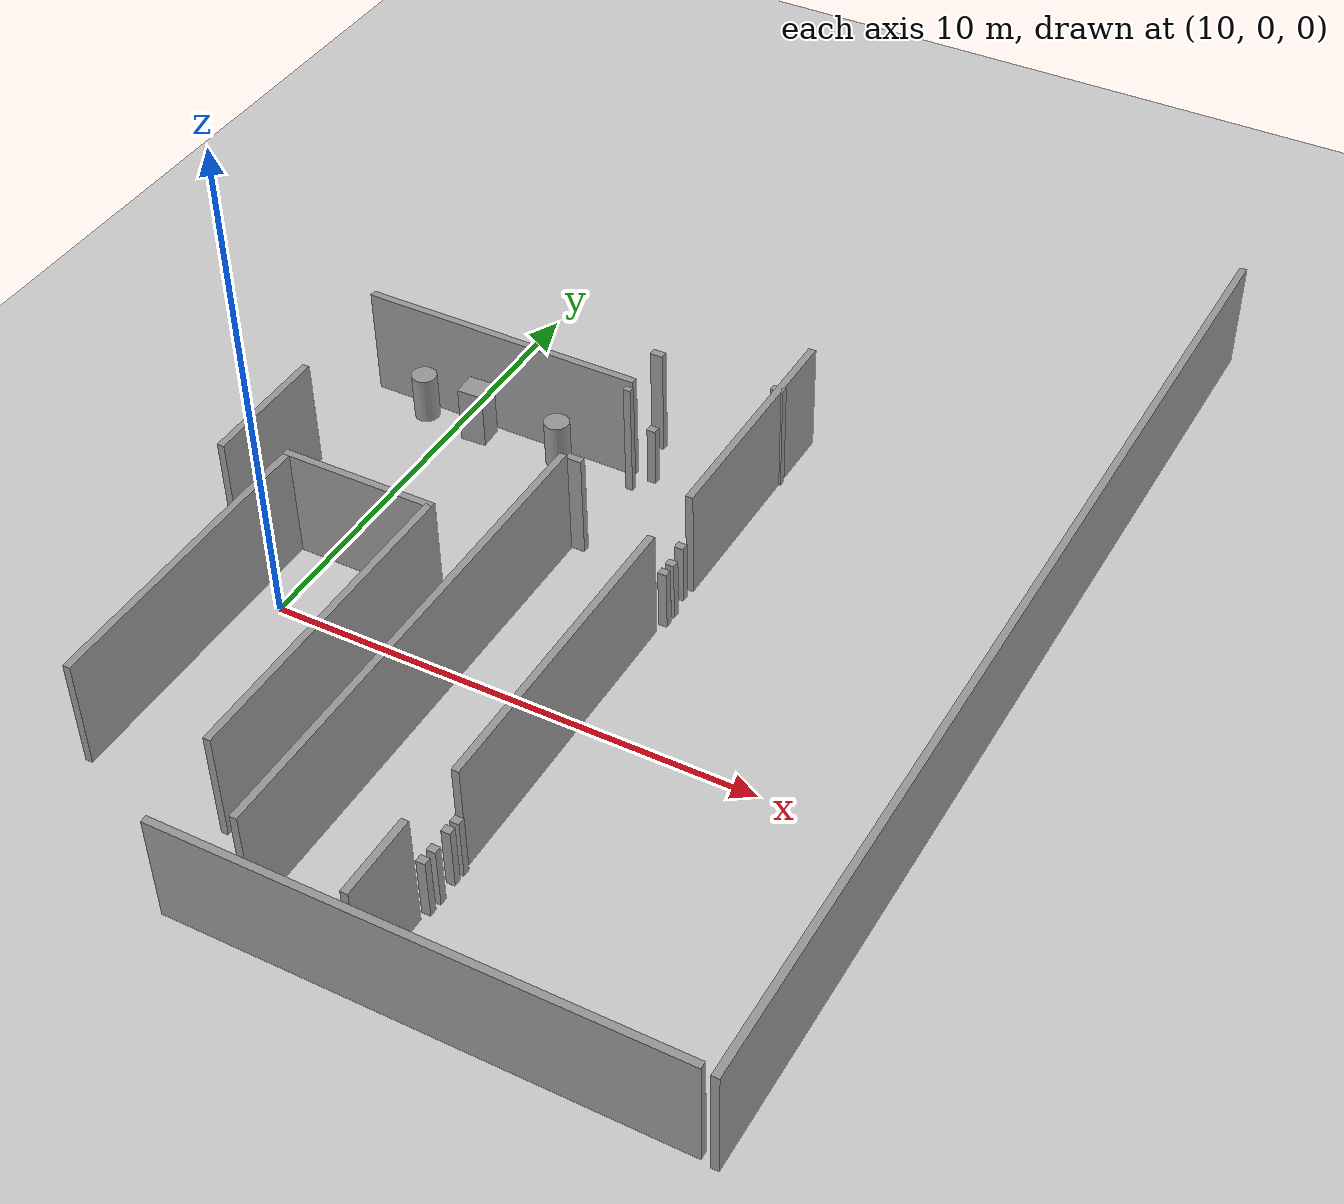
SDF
<sdf version="1.7">
 <world name="default">
  <model name="ground_plane">
   <static>1</static>
   <link name="link">
    <collision name="collision">
     <geometry><plane><normal>0 0 1</normal><size>100 100</size></plane></geometry>
     <surface>
      <contact><collide_bitmask>65535</collide_bitmask></contact>
      <friction><ode><mu>100</mu><mu2>50</mu2></ode></friction>
     </surface>
    </collision>
    <visual name="visual">
     <cast_shadows>0</cast_shadows>
     <geometry><plane><normal>0 0 1</normal><size>100 100</size></plane></geometry>
     <material>
      <script><uri>file://media/materials/scripts/gazebo.material</uri><name>Gazebo/Grey</name></script>
     </material>
    </visual>
   </link>
  </model>
  <model name="cabinet">
   <static>1</static>
   <link name="cabinet_bottom_plate">
    <inertial>
     <pose>0 0 -1 0 -0 0</pose>
     <inertia><ixx>2.05</ixx><ixy>0</ixy><ixz>0</ixz><iyy>2.05</iyy><iyz>0</iyz><izz>2.05</izz></inertia>
     <mass>25</mass>
    </inertial>
    <collision name="cabinet_bottom_plate_geom">
     <pose>0 0 0.01 0 -0 0</pose>
     <geometry><box><size>0.45 0.45 0.02</size></box></geometry>
    </collision>
    <visual name="cabinet_bottom_plate_geom_visual">
     <pose>0 0 0.01 0 -0 0</pose>
     <geometry><box><size>0.45 0.45 0.02</size></box></geometry>
     <material>
      <script><uri>file://media/materials/scripts/gazebo.material</uri><name>Gazebo/Wood</name></script>
     </material>
    </visual>
    <collision name="cabinet_bottom_plate_geom_cabinet_back_plate">
     <pose>0.235 0 0.51 0 -0 0</pose>
     <geometry><box><size>0.02 0.45 1.02</size></box></geometry>
    </collision>
    <visual name="cabinet_bottom_plate_geom_cabinet_back_plate_visual">
     <pose>0.235 0 0.51 0 -0 0</pose>
     <geometry><box><size>0.02 0.45 1.02</size></box></geometry>
     <material>
      <script><uri>file://media/materials/scripts/gazebo.material</uri><name>Gazebo/Wood</name></script>
     </material>
    </visual>
    <collision name="cabinet_bottom_plate_geom_cabinet_left_plate">
     <pose>0 0.235 0.51 0 -0 0</pose>
     <geometry><box><size>0.45 0.02 1.02</size></box></geometry>
    </collision>
    <visual name="cabinet_bottom_plate_geom_cabinet_left_plate_visual">
     <pose>0 0.235 0.51 0 -0 0</pose>
     <geometry><box><size>0.45 0.02 1.02</size></box></geometry>
     <material>
      <script><uri>file://media/materials/scripts/gazebo.material</uri><name>Gazebo/Wood</name></script>
     </material>
    </visual>
    <collision name="cabinet_bottom_plate_geom_cabinet_middle_plate">
     <pose>0 0 0.51 0 -0 0</pose>
     <geometry><box><size>0.45 0.45 0.02</size></box></geometry>
    </collision>
    <visual name="cabinet_bottom_plate_geom_cabinet_middle_plate_visual">
     <pose>0 0 0.51 0 -0 0</pose>
     <geometry><box><size>0.45 0.45 0.02</size></box></geometry>
     <material>
      <script><uri>file://media/materials/scripts/gazebo.material</uri><name>Gazebo/Wood</name></script>
     </material>
    </visual>
    <collision name="cabinet_bottom_plate_geom_cabinet_right_plate">
     <pose>0 -0.235 0.51 0 -0 0</pose>
     <geometry><box><size>0.45 0.02 1.02</size></box></geometry>
    </collision>
    <visual name="cabinet_bottom_plate_geom_cabinet_right_plate_visual">
     <pose>0 -0.235 0.51 0 -0 0</pose>
     <geometry><box><size>0.45 0.02 1.02</size></box></geometry>
     <material>
      <script><uri>file://media/materials/scripts/gazebo.material</uri><name>Gazebo/Wood</name></script>
     </material>
    </visual>
    <collision name="cabinet_bottom_plate_geom_cabinet_top_plate">
     <pose>0 0 1.01 0 -0 0</pose>
     <geometry><box><size>0.45 0.45 0.02</size></box></geometry>
    </collision>
    <visual name="cabinet_bottom_plate_geom_cabinet_top_plate_visual">
     <pose>0 0 1.01 0 -0 0</pose>
     <geometry><box><size>0.45 0.45 0.02</size></box></geometry>
     <material>
      <script><uri>file://media/materials/scripts/gazebo.material</uri><name>Gazebo/Wood</name></script>
     </material>
    </visual>
   </link>
   <pose>9.66101 6.89219 0 0 -0 0</pose>
  </model>
  <model name="cabinet_0">
   <static>1</static>
   <link name="cabinet_bottom_plate">
    <inertial>
     <pose>0 0 -1 0 -0 0</pose>
     <inertia><ixx>2.05</ixx><ixy>0</ixy><ixz>0</ixz><iyy>2.05</iyy><iyz>0</iyz><izz>2.05</izz></inertia>
     <mass>25</mass>
    </inertial>
    <collision name="cabinet_bottom_plate_geom">
     <pose>0 0 0.01 0 -0 0</pose>
     <geometry><box><size>0.45 0.45 0.02</size></box></geometry>
    </collision>
    <visual name="cabinet_bottom_plate_geom_visual">
     <pose>0 0 0.01 0 -0 0</pose>
     <geometry><box><size>0.45 0.45 0.02</size></box></geometry>
     <material>
      <script><uri>file://media/materials/scripts/gazebo.material</uri><name>Gazebo/Wood</name></script>
     </material>
    </visual>
    <collision name="cabinet_bottom_plate_geom_cabinet_back_plate">
     <pose>0.235 0 0.51 0 -0 0</pose>
     <geometry><box><size>0.02 0.45 1.02</size></box></geometry>
    </collision>
    <visual name="cabinet_bottom_plate_geom_cabinet_back_plate_visual">
     <pose>0.235 0 0.51 0 -0 0</pose>
     <geometry><box><size>0.02 0.45 1.02</size></box></geometry>
     <material>
      <script><uri>file://media/materials/scripts/gazebo.material</uri><name>Gazebo/Wood</name></script>
     </material>
    </visual>
    <collision name="cabinet_bottom_plate_geom_cabinet_left_plate">
     <pose>0 0.235 0.51 0 -0 0</pose>
     <geometry><box><size>0.45 0.02 1.02</size></box></geometry>
    </collision>
    <visual name="cabinet_bottom_plate_geom_cabinet_left_plate_visual">
     <pose>0 0.235 0.51 0 -0 0</pose>
     <geometry><box><size>0.45 0.02 1.02</size></box></geometry>
     <material>
      <script><uri>file://media/materials/scripts/gazebo.material</uri><name>Gazebo/Wood</name></script>
     </material>
    </visual>
    <collision name="cabinet_bottom_plate_geom_cabinet_middle_plate">
     <pose>0 0 0.51 0 -0 0</pose>
     <geometry><box><size>0.45 0.45 0.02</size></box></geometry>
    </collision>
    <visual name="cabinet_bottom_plate_geom_cabinet_middle_plate_visual">
     <pose>0 0 0.51 0 -0 0</pose>
     <geometry><box><size>0.45 0.45 0.02</size></box></geometry>
     <material>
      <script><uri>file://media/materials/scripts/gazebo.material</uri><name>Gazebo/Wood</name></script>
     </material>
    </visual>
    <collision name="cabinet_bottom_plate_geom_cabinet_right_plate">
     <pose>0 -0.235 0.51 0 -0 0</pose>
     <geometry><box><size>0.45 0.02 1.02</size></box></geometry>
    </collision>
    <visual name="cabinet_bottom_plate_geom_cabinet_right_plate_visual">
     <pose>0 -0.235 0.51 0 -0 0</pose>
     <geometry><box><size>0.45 0.02 1.02</size></box></geometry>
     <material>
      <script><uri>file://media/materials/scripts/gazebo.material</uri><name>Gazebo/Wood</name></script>
     </material>
    </visual>
    <collision name="cabinet_bottom_plate_geom_cabinet_top_plate">
     <pose>0 0 1.01 0 -0 0</pose>
     <geometry><box><size>0.45 0.45 0.02</size></box></geometry>
    </collision>
    <visual name="cabinet_bottom_plate_geom_cabinet_top_plate_visual">
     <pose>0 0 1.01 0 -0 0</pose>
     <geometry><box><size>0.45 0.45 0.02</size></box></geometry>
     <material>
      <script><uri>file://media/materials/scripts/gazebo.material</uri><name>Gazebo/Wood</name></script>
     </material>
    </visual>
   </link>
   <pose>9.68381 7.3421 0 0 -0 0</pose>
  </model>
  <model name="wooden_board_clone_clone">
   <link name="base">
    <pose>0 0 0.00523 0 -0 0</pose>
    <inertial>
     <mass>0.2765</mass>
     <inertia>
      <ixx>0.0025148</ixx>
      <ixy>0</ixy>
      <ixz>0</ixz>
      <iyy>0.00024037</iyy>
      <iyz>0</iyz>
      <izz>0.00275013</izz>
     </inertia>
    </inertial>
    <collision name="collision">
     <geometry><box><size>0.1016 0.3302 0.01046</size></box></geometry>
     <surface>
      <contact>
       <poissons_ratio>0.347</poissons_ratio>
       <elastic_modulus>8.8e+09</elastic_modulus>
       <ode><kp>100000</kp><kd>100</kd><max_vel>100</max_vel><min_depth>0.001</min_depth></ode>
      </contact>
      <friction>
       <torsional>
        <coefficient>1</coefficient>
        <use_patch_radius>0</use_patch_radius>
        <surface_radius>0.01</surface_radius>
       </torsional>
      </friction>
     </surface>
    </collision>
    <visual name="visual">
     <geometry><box><size>0.1016 0.3302 0.01046</size></box></geometry>
     <material>
      <script><uri>file://media/materials/scripts/gazebo.material</uri><name>Gazebo/Wood</name></script>
     </material>
    </visual>
    <visual name="tee_nut_1">
     <pose>0 -0.116 0 0 -0 0</pose>
     <geometry><cylinder><radius>0.00635</radius><length>0.0105646</length></cylinder></geometry>
     <material>
      <script><uri>file://media/materials/scripts/gazebo.material</uri><name>Gazebo/Grey</name></script>
     </material>
    </visual>
    <visual name="tee_nut_2">
     <pose>0 -0.038 0 0 -0 0</pose>
     <geometry><cylinder><radius>0.00635</radius><length>0.0105646</length></cylinder></geometry>
     <material>
      <script><uri>file://media/materials/scripts/gazebo.material</uri><name>Gazebo/Grey</name></script>
     </material>
    </visual>
    <visual name="tee_nut_3">
     <pose>0 0.038 0 0 -0 0</pose>
     <geometry><cylinder><radius>0.00635</radius><length>0.0105646</length></cylinder></geometry>
     <material>
      <script><uri>file://media/materials/scripts/gazebo.material</uri><name>Gazebo/Grey</name></script>
     </material>
    </visual>
    <visual name="tee_nut_4">
     <pose>0 0.116 0 0 -0 0</pose>
     <geometry><cylinder><radius>0.00635</radius><length>0.0105646</length></cylinder></geometry>
     <material>
      <script><uri>file://media/materials/scripts/gazebo.material</uri><name>Gazebo/Grey</name></script>
     </material>
    </visual>
   </link>
   <pose>11.7706 1.42187 -0.001007 -0 -0 -2.27337</pose>
  </model>
  <model name="wooden_board_clone_clone_1">
   <link name="base">
    <pose>0 0 0.00523 0 -0 0</pose>
    <inertial>
     <mass>0.2765</mass>
     <inertia>
      <ixx>0.0025148</ixx>
      <ixy>0</ixy>
      <ixz>0</ixz>
      <iyy>0.00024037</iyy>
      <iyz>0</iyz>
      <izz>0.00275013</izz>
     </inertia>
    </inertial>
    <collision name="collision">
     <geometry><box><size>0.1016 0.3302 0.01046</size></box></geometry>
     <surface>
      <contact>
       <poissons_ratio>0.347</poissons_ratio>
       <elastic_modulus>8.8e+09</elastic_modulus>
       <ode><kp>100000</kp><kd>100</kd><max_vel>100</max_vel><min_depth>0.001</min_depth></ode>
      </contact>
      <friction>
       <torsional>
        <coefficient>1</coefficient>
        <use_patch_radius>0</use_patch_radius>
        <surface_radius>0.01</surface_radius>
       </torsional>
      </friction>
     </surface>
    </collision>
    <visual name="visual">
     <geometry><box><size>0.1016 0.3302 0.01046</size></box></geometry>
     <material>
      <script><uri>file://media/materials/scripts/gazebo.material</uri><name>Gazebo/Wood</name></script>
     </material>
    </visual>
    <visual name="tee_nut_1">
     <pose>0 -0.116 0 0 -0 0</pose>
     <geometry><cylinder><radius>0.00635</radius><length>0.0105646</length></cylinder></geometry>
     <material>
      <script><uri>file://media/materials/scripts/gazebo.material</uri><name>Gazebo/Grey</name></script>
     </material>
    </visual>
    <visual name="tee_nut_2">
     <pose>0 -0.038 0 0 -0 0</pose>
     <geometry><cylinder><radius>0.00635</radius><length>0.0105646</length></cylinder></geometry>
     <material>
      <script><uri>file://media/materials/scripts/gazebo.material</uri><name>Gazebo/Grey</name></script>
     </material>
    </visual>
    <visual name="tee_nut_3">
     <pose>0 0.038 0 0 -0 0</pose>
     <geometry><cylinder><radius>0.00635</radius><length>0.0105646</length></cylinder></geometry>
     <material>
      <script><uri>file://media/materials/scripts/gazebo.material</uri><name>Gazebo/Grey</name></script>
     </material>
    </visual>
    <visual name="tee_nut_4">
     <pose>0 0.116 0 0 -0 0</pose>
     <geometry><cylinder><radius>0.00635</radius><length>0.0105646</length></cylinder></geometry>
     <material>
      <script><uri>file://media/materials/scripts/gazebo.material</uri><name>Gazebo/Grey</name></script>
     </material>
    </visual>
   </link>
   <pose>12.1321 1.02226 -0.001007 0 0 -1.57323</pose>
  </model>
  <model name="unit_box_clone_clone_clone">
   <pose>10.5266 6.08598 0.603201 1e-06 2e-06 0.053508</pose>
   <link name="link">
    <inertial>
     <mass>1</mass>
     <inertia>
      <ixx>0.166667</ixx>
      <ixy>0</ixy>
      <ixz>0</ixz>
      <iyy>0.166667</iyy>
      <iyz>0</iyz>
      <izz>0.166667</izz>
     </inertia>
    </inertial>
    <collision name="collision"><geometry><box><size>0.544182 0.503784 1.2064</size></box></geometry></collision>
    <visual name="visual">
     <geometry><box><size>0.544182 0.503784 1.2064</size></box></geometry>
     <material>
      <script><name>Gazebo/Grey</name><uri>file://media/materials/scripts/gazebo.material</uri></script>
     </material>
    </visual>
   </link>
  </model>
  <model name="unit_cylinder_0_clone_clone">
   <pose>12.3465 6.1337 0.499998 0 1e-06 2e-06</pose>
   <link name="link">
    <inertial>
     <mass>1</mass>
     <inertia><ixx>0.145833</ixx><ixy>0</ixy><ixz>0</ixz><iyy>0.145833</iyy><iyz>0</iyz><izz>0.125</izz></inertia>
    </inertial>
    <collision name="collision">
     <geometry><cylinder><radius>0.25828</radius><length>1</length></cylinder></geometry>
    </collision>
    <visual name="visual">
     <geometry><cylinder><radius>0.25828</radius><length>1</length></cylinder></geometry>
     <material>
      <script><name>Gazebo/Grey</name><uri>file://media/materials/scripts/gazebo.material</uri></script>
     </material>
    </visual>
   </link>
  </model>
  <model name="unit_cylinder_0_clone_clone_0">
   <pose>9.24397 6.16248 0.499998 0 1e-06 2e-06</pose>
   <link name="link">
    <inertial>
     <mass>1</mass>
     <inertia><ixx>0.145833</ixx><ixy>0</ixy><ixz>0</ixz><iyy>0.145833</iyy><iyz>0</iyz><izz>0.125</izz></inertia>
    </inertial>
    <collision name="collision">
     <geometry><cylinder><radius>0.25828</radius><length>1</length></cylinder></geometry>
    </collision>
    <visual name="visual">
     <geometry><cylinder><radius>0.25828</radius><length>1</length></cylinder></geometry>
     <material>
      <script><name>Gazebo/Grey</name><uri>file://media/materials/scripts/gazebo.material</uri></script>
     </material>
    </visual>
   </link>
  </model>
  <model name="unit_box_clone_1_clone_0_clone">
   <pose>16.4024 3.80218 0.644231 4e-06 3e-06 -0.000104</pose>
   <link name="link">
    <inertial>
     <mass>1</mass>
     <inertia>
      <ixx>0.166667</ixx>
      <ixy>0</ixy>
      <ixz>0</ixz>
      <iyy>0.166667</iyy>
      <iyz>0</iyz>
      <izz>0.166667</izz>
     </inertia>
    </inertial>
    <collision name="collision"><geometry><box><size>0.179333 0.158753 1.28846</size></box></geometry></collision>
    <visual name="visual">
     <geometry><box><size>0.179333 0.158753 1.28846</size></box></geometry>
     <material>
      <script><name>Gazebo/Grey</name><uri>file://media/materials/scripts/gazebo.material</uri></script>
     </material>
    </visual>
   </link>
  </model>
  <model name="unit_box_clone_1_clone_0_clone_0">
   <pose>16.4779 3.31335 0.64423 -1e-06 3e-06 -0.000197</pose>
   <link name="link">
    <inertial>
     <mass>1</mass>
     <inertia>
      <ixx>0.166667</ixx>
      <ixy>0</ixy>
      <ixz>0</ixz>
      <iyy>0.166667</iyy>
      <iyz>0</iyz>
      <izz>0.166667</izz>
     </inertia>
    </inertial>
    <collision name="collision"><geometry><box><size>0.179333 0.158753 1.28846</size></box></geometry></collision>
    <visual name="visual">
     <geometry><box><size>0.179333 0.158753 1.28846</size></box></geometry>
     <material>
      <script><name>Gazebo/Grey</name><uri>file://media/materials/scripts/gazebo.material</uri></script>
     </material>
    </visual>
   </link>
  </model>
  <model name="unit_box_clone_1_clone_0_clone_1">
   <pose>16.4044 -4.09079 0.64423 0 0 -0.000157</pose>
   <link name="link">
    <inertial>
     <mass>1</mass>
     <inertia>
      <ixx>0.166667</ixx>
      <ixy>0</ixy>
      <ixz>0</ixz>
      <iyy>0.166667</iyy>
      <iyz>0</iyz>
      <izz>0.166667</izz>
     </inertia>
    </inertial>
    <collision name="collision"><geometry><box><size>0.179333 0.158753 1.28846</size></box></geometry></collision>
    <visual name="visual">
     <geometry><box><size>0.179333 0.158753 1.28846</size></box></geometry>
     <material>
      <script><name>Gazebo/Grey</name><uri>file://media/materials/scripts/gazebo.material</uri></script>
     </material>
    </visual>
   </link>
  </model>
  <model name="unit_box_clone_1_clone_0_clone_2">
   <pose>16.4195 -4.5488 0.64423 0 -0 -7.9e-05</pose>
   <link name="link">
    <inertial>
     <mass>1</mass>
     <inertia>
      <ixx>0.166667</ixx>
      <ixy>0</ixy>
      <ixz>0</ixz>
      <iyy>0.166667</iyy>
      <iyz>0</iyz>
      <izz>0.166667</izz>
     </inertia>
    </inertial>
    <collision name="collision"><geometry><box><size>0.179333 0.158753 1.28846</size></box></geometry></collision>
    <visual name="visual">
     <geometry><box><size>0.179333 0.158753 1.28846</size></box></geometry>
     <material>
      <script><name>Gazebo/Grey</name><uri>file://media/materials/scripts/gazebo.material</uri></script>
     </material>
    </visual>
   </link>
  </model>
  <model name="unit_box_clone_1_clone_0_clone_3">
   <pose>15.9977 6.53727 0.64423 -1e-06 0 -0.000229</pose>
   <link name="link">
    <inertial>
     <mass>1</mass>
     <inertia>
      <ixx>0.166667</ixx>
      <ixy>0</ixy>
      <ixz>0</ixz>
      <iyy>0.166667</iyy>
      <iyz>0</iyz>
      <izz>0.166667</izz>
     </inertia>
    </inertial>
    <collision name="collision"><geometry><box><size>0.179333 0.158753 1.28846</size></box></geometry></collision>
    <visual name="visual">
     <geometry><box><size>0.179333 0.158753 1.28846</size></box></geometry>
     <material>
      <script><name>Gazebo/Grey</name><uri>file://media/materials/scripts/gazebo.material</uri></script>
     </material>
    </visual>
   </link>
  </model>
  <model name="unit_box_clone_1_clone_0_clone_4">
   <pose>14.2973 6.51749 0.64422 4e-06 -0 -5.1e-05</pose>
   <link name="link">
    <inertial>
     <mass>1</mass>
     <inertia>
      <ixx>0.166667</ixx>
      <ixy>0</ixy>
      <ixz>0</ixz>
      <iyy>0.166667</iyy>
      <iyz>0</iyz>
      <izz>0.166667</izz>
     </inertia>
    </inertial>
    <collision name="collision"><geometry><box><size>0.179333 0.158753 1.28846</size></box></geometry></collision>
    <visual name="visual">
     <geometry><box><size>0.179333 0.158753 1.28846</size></box></geometry>
     <material>
      <script><name>Gazebo/Grey</name><uri>file://media/materials/scripts/gazebo.material</uri></script>
     </material>
    </visual>
   </link>
  </model>
  <model name="unit_box_clone_1_clone_0_clone_0_clone">
   <pose>16.4794 3.03438 0.64423 0 0 -0.000198</pose>
   <link name="link">
    <inertial>
     <mass>1</mass>
     <inertia>
      <ixx>0.166667</ixx>
      <ixy>0</ixy>
      <ixz>0</ixz>
      <iyy>0.166667</iyy>
      <iyz>0</iyz>
      <izz>0.166667</izz>
     </inertia>
    </inertial>
    <collision name="collision"><geometry><box><size>0.179333 0.158753 1.28846</size></box></geometry></collision>
    <visual name="visual">
     <geometry><box><size>0.179333 0.158753 1.28846</size></box></geometry>
     <material>
      <script><name>Gazebo/Grey</name><uri>file://media/materials/scripts/gazebo.material</uri></script>
     </material>
    </visual>
   </link>
  </model>
  <model name="unit_box_clone_1_clone_0_clone_0_clone_0">
   <pose>16.4018 -4.83011 0.64423 0 0 -0.000198</pose>
   <link name="link">
    <inertial>
     <mass>1</mass>
     <inertia>
      <ixx>0.166667</ixx>
      <ixy>0</ixy>
      <ixz>0</ixz>
      <iyy>0.166667</iyy>
      <iyz>0</iyz>
      <izz>0.166667</izz>
     </inertia>
    </inertial>
    <collision name="collision"><geometry><box><size>0.179333 0.158753 1.28846</size></box></geometry></collision>
    <visual name="visual">
     <geometry><box><size>0.179333 0.158753 1.28846</size></box></geometry>
     <material>
      <script><name>Gazebo/Grey</name><uri>file://media/materials/scripts/gazebo.material</uri></script>
     </material>
    </visual>
   </link>
  </model>
  <model name="unit_box_clone_1_clone_0_clone_0_clone_1">
   <pose>16.4213 -3.84529 0.64423 0 0 -0.000198</pose>
   <link name="link">
    <inertial>
     <mass>1</mass>
     <inertia>
      <ixx>0.166667</ixx>
      <ixy>0</ixy>
      <ixz>0</ixz>
      <iyy>0.166667</iyy>
      <iyz>0</iyz>
      <izz>0.166667</izz>
     </inertia>
    </inertial>
    <collision name="collision"><geometry><box><size>0.179333 0.158753 1.28846</size></box></geometry></collision>
    <visual name="visual">
     <geometry><box><size>0.179333 0.158753 1.28846</size></box></geometry>
     <material>
      <script><name>Gazebo/Grey</name><uri>file://media/materials/scripts/gazebo.material</uri></script>
     </material>
    </visual>
   </link>
  </model>
  <model name="rastech_map_03">
   <link name="Wall_21">
    <pose>-0.450715 -2.39462 0 0 0 -1.5708</pose>
    <visual name="Wall_21_Visual">
     <pose>0 0 1.25 0 -0 0</pose>
     <geometry><box><size>2.75 0.15 2.5</size></box></geometry>
     <material>
      <script><uri>file://media/materials/scripts/gazebo.material</uri><name>Gazebo/Grey</name></script>
      <ambient>1 1 1 1</ambient>
      <shader type="pixel"/>
     </material>
     <meta><layer>0</layer></meta>
    </visual>
    <collision name="Wall_21_Collision">
     <pose>0 0 1.25 0 -0 0</pose>
     <geometry><box><size>2.75 0.15 2.5</size></box></geometry>
     <surface>
      <friction>
       <ode><mu>1</mu><mu2>1</mu2><fdir1>0 0 0</fdir1><slip1>0</slip1><slip2>0</slip2></ode>
       <torsional>
        <coefficient>1</coefficient>
        <patch_radius>0</patch_radius>
        <surface_radius>0</surface_radius>
        <use_patch_radius>1</use_patch_radius>
        <ode><slip>0</slip></ode>
       </torsional>
      </friction>
      <bounce><restitution_coefficient>0</restitution_coefficient><threshold>1e+06</threshold></bounce>
      <contact>
       <collide_without_contact>0</collide_without_contact>
       <collide_without_contact_bitmask>1</collide_without_contact_bitmask>
       <collide_bitmask>1</collide_bitmask>
       <ode>
        <soft_cfm>0</soft_cfm>
        <soft_erp>0.2</soft_erp>
        <kp>1e+13</kp>
        <kd>1</kd>
        <max_vel>0.01</max_vel>
        <min_depth>0</min_depth>
       </ode>
       <bullet>
        <split_impulse>1</split_impulse>
        <split_impulse_penetration_threshold>-0.01</split_impulse_penetration_threshold>
        <soft_cfm>0</soft_cfm>
        <soft_erp>0.2</soft_erp>
        <kp>1e+13</kp>
        <kd>1</kd>
       </bullet>
      </contact>
     </surface>
    </collision>
   </link>
   <link name="Wall_25">
    <pose>2.35835 1.56332 0 0 -0 0</pose>
    <visual name="Wall_25_Visual">
     <pose>0 0 1.25 0 -0 0</pose>
     <geometry><box><size>6 0.15 2.5</size></box></geometry>
     <material>
      <script><uri>file://media/materials/scripts/gazebo.material</uri><name>Gazebo/Grey</name></script>
      <ambient>1 1 1 1</ambient>
      <shader type="pixel"/>
     </material>
     <meta><layer>0</layer></meta>
    </visual>
    <collision name="Wall_25_Collision">
     <pose>0 0 1.25 0 -0 0</pose>
     <geometry><box><size>6 0.15 2.5</size></box></geometry>
     <surface>
      <friction>
       <ode><mu>1</mu><mu2>1</mu2><fdir1>0 0 0</fdir1><slip1>0</slip1><slip2>0</slip2></ode>
       <torsional>
        <coefficient>1</coefficient>
        <patch_radius>0</patch_radius>
        <surface_radius>0</surface_radius>
        <use_patch_radius>1</use_patch_radius>
        <ode><slip>0</slip></ode>
       </torsional>
      </friction>
      <bounce><restitution_coefficient>0</restitution_coefficient><threshold>1e+06</threshold></bounce>
      <contact>
       <collide_without_contact>0</collide_without_contact>
       <collide_without_contact_bitmask>1</collide_without_contact_bitmask>
       <collide_bitmask>1</collide_bitmask>
       <ode>
        <soft_cfm>0</soft_cfm>
        <soft_erp>0.2</soft_erp>
        <kp>1e+13</kp>
        <kd>1</kd>
        <max_vel>0.01</max_vel>
        <min_depth>0</min_depth>
       </ode>
       <bullet>
        <split_impulse>1</split_impulse>
        <split_impulse_penetration_threshold>-0.01</split_impulse_penetration_threshold>
        <soft_cfm>0</soft_cfm>
        <soft_erp>0.2</soft_erp>
        <kp>1e+13</kp>
        <kd>1</kd>
       </bullet>
      </contact>
     </surface>
    </collision>
   </link>
   <link name="Wall_27_clone_4_clone_2">
    <pose>7.89656 2.64133 0 0 -0 3.14159</pose>
    <inertial>
     <inertia><ixx>0</ixx><ixy>0</ixy><ixz>0</ixz><iyy>0</iyy><iyz>0</iyz><izz>0</izz></inertia>
     <mass>0</mass>
    </inertial>
    <visual name="Wall_27_Visual">
     <pose>0 0 1.25 0 -0 0</pose>
     <geometry><box><size>0.265883 0.15 2.5</size></box></geometry>
     <material>
      <script><uri>file://media/materials/scripts/gazebo.material</uri><name>Gazebo/Grey</name></script>
      <ambient>1 1 1 1</ambient>
      <shader type="pixel"/>
     </material>
     <meta><layer>0</layer></meta>
    </visual>
    <collision name="Wall_27_Collision">
     <pose>0 0 1.25 0 -0 0</pose>
     <geometry><box><size>0.265883 0.15 2.5</size></box></geometry>
     <surface>
      <friction>
       <ode><mu>1</mu><mu2>1</mu2><fdir1>0 0 0</fdir1><slip1>0</slip1><slip2>0</slip2></ode>
       <torsional>
        <coefficient>1</coefficient>
        <patch_radius>0</patch_radius>
        <surface_radius>0</surface_radius>
        <use_patch_radius>1</use_patch_radius>
        <ode><slip>0</slip></ode>
       </torsional>
      </friction>
      <bounce><restitution_coefficient>0</restitution_coefficient><threshold>1e+06</threshold></bounce>
      <contact>
       <collide_without_contact>0</collide_without_contact>
       <collide_without_contact_bitmask>1</collide_without_contact_bitmask>
       <collide_bitmask>1</collide_bitmask>
       <ode>
        <soft_cfm>0</soft_cfm>
        <soft_erp>0.2</soft_erp>
        <kp>1e+13</kp>
        <kd>1</kd>
        <max_vel>0.01</max_vel>
        <min_depth>0</min_depth>
       </ode>
       <bullet>
        <split_impulse>1</split_impulse>
        <split_impulse_penetration_threshold>-0.01</split_impulse_penetration_threshold>
        <soft_cfm>0</soft_cfm>
        <soft_erp>0.2</soft_erp>
        <kp>1e+13</kp>
        <kd>1</kd>
       </bullet>
      </contact>
     </surface>
    </collision>
   </link>
   <link name="Wall_27_clone_4_clone_3">
    <pose>5.33652 2.5339 0 0 -0 3.14159</pose>
    <inertial>
     <inertia><ixx>0</ixx><ixy>0</ixy><ixz>0</ixz><iyy>0</iyy><iyz>0</iyz><izz>0</izz></inertia>
     <mass>0</mass>
    </inertial>
    <visual name="Wall_27_Visual">
     <pose>0 0 1.25 0 -0 0</pose>
     <geometry><box><size>0.265883 0.15 2.5</size></box></geometry>
     <material>
      <script><uri>file://media/materials/scripts/gazebo.material</uri><name>Gazebo/Grey</name></script>
      <ambient>1 1 1 1</ambient>
      <shader type="pixel"/>
     </material>
     <meta><layer>0</layer></meta>
    </visual>
    <collision name="Wall_27_Collision">
     <pose>0 0 1.25 0 -0 0</pose>
     <geometry><box><size>0.265883 0.15 2.5</size></box></geometry>
     <surface>
      <friction>
       <ode><mu>1</mu><mu2>1</mu2><fdir1>0 0 0</fdir1><slip1>0</slip1><slip2>0</slip2></ode>
       <torsional>
        <coefficient>1</coefficient>
        <patch_radius>0</patch_radius>
        <surface_radius>0</surface_radius>
        <use_patch_radius>1</use_patch_radius>
        <ode><slip>0</slip></ode>
       </torsional>
      </friction>
      <bounce><restitution_coefficient>0</restitution_coefficient><threshold>1e+06</threshold></bounce>
      <contact>
       <collide_without_contact>0</collide_without_contact>
       <collide_without_contact_bitmask>1</collide_without_contact_bitmask>
       <collide_bitmask>1</collide_bitmask>
       <ode>
        <soft_cfm>0</soft_cfm>
        <soft_erp>0.2</soft_erp>
        <kp>1e+13</kp>
        <kd>1</kd>
        <max_vel>0.01</max_vel>
        <min_depth>0</min_depth>
       </ode>
       <bullet>
        <split_impulse>1</split_impulse>
        <split_impulse_penetration_threshold>-0.01</split_impulse_penetration_threshold>
        <soft_cfm>0</soft_cfm>
        <soft_erp>0.2</soft_erp>
        <kp>1e+13</kp>
        <kd>1</kd>
       </bullet>
      </contact>
     </surface>
    </collision>
   </link>
   <link name="Wall_37">
    <pose>14.3842 -0.706008 0 0 0 -1.5708</pose>
    <inertial>
     <inertia><ixx>0</ixx><ixy>0</ixy><ixz>0</ixz><iyy>0</iyy><iyz>0</iyz><izz>0</izz></inertia>
     <mass>0</mass>
    </inertial>
    <visual name="Wall_37_Visual">
     <pose>0 0 1.25 0 -0 0</pose>
     <geometry><box><size>22.5952 0.15 2.5</size></box></geometry>
     <material>
      <script><uri>file://media/materials/scripts/gazebo.material</uri><name>Gazebo/Grey</name></script>
      <ambient>1 1 1 1</ambient>
      <shader type="pixel"/>
     </material>
     <meta><layer>0</layer></meta>
    </visual>
    <collision name="Wall_37_Collision">
     <pose>0 0 1.25 0 -0 0</pose>
     <geometry><box><size>22.5952 0.15 2.5</size></box></geometry>
     <surface>
      <friction>
       <ode><mu>1</mu><mu2>1</mu2><fdir1>0 0 0</fdir1><slip1>0</slip1><slip2>0</slip2></ode>
       <torsional>
        <coefficient>1</coefficient>
        <patch_radius>0</patch_radius>
        <surface_radius>0</surface_radius>
        <use_patch_radius>1</use_patch_radius>
        <ode><slip>0</slip></ode>
       </torsional>
      </friction>
      <bounce><restitution_coefficient>0</restitution_coefficient><threshold>1e+06</threshold></bounce>
      <contact>
       <collide_without_contact>0</collide_without_contact>
       <collide_without_contact_bitmask>1</collide_without_contact_bitmask>
       <collide_bitmask>1</collide_bitmask>
       <ode>
        <soft_cfm>0</soft_cfm>
        <soft_erp>0.2</soft_erp>
        <kp>1e+13</kp>
        <kd>1</kd>
        <max_vel>0.01</max_vel>
        <min_depth>0</min_depth>
       </ode>
       <bullet>
        <split_impulse>1</split_impulse>
        <split_impulse_penetration_threshold>-0.01</split_impulse_penetration_threshold>
        <soft_cfm>0</soft_cfm>
        <soft_erp>0.2</soft_erp>
        <kp>1e+13</kp>
        <kd>1</kd>
       </bullet>
      </contact>
     </surface>
    </collision>
   </link>
   <link name="Wall_48">
    <pose>7.91687 1.56088 0 0 0 -1.5708</pose>
    <visual name="Wall_48_Visual">
     <pose>0 0 1.25 0 -0 0</pose>
     <geometry><box><size>5 0.15 2.5</size></box></geometry>
     <material>
      <script><uri>file://media/materials/scripts/gazebo.material</uri><name>Gazebo/Grey</name></script>
      <ambient>1 1 1 1</ambient>
      <shader type="pixel"/>
     </material>
     <meta><layer>0</layer></meta>
    </visual>
    <collision name="Wall_48_Collision">
     <pose>0 0 1.25 0 -0 0</pose>
     <geometry><box><size>5 0.15 2.5</size></box></geometry>
     <surface>
      <friction>
       <ode><mu>1</mu><mu2>1</mu2><fdir1>0 0 0</fdir1><slip1>0</slip1><slip2>0</slip2></ode>
       <torsional>
        <coefficient>1</coefficient>
        <patch_radius>0</patch_radius>
        <surface_radius>0</surface_radius>
        <use_patch_radius>1</use_patch_radius>
        <ode><slip>0</slip></ode>
       </torsional>
      </friction>
      <bounce><restitution_coefficient>0</restitution_coefficient><threshold>1e+06</threshold></bounce>
      <contact>
       <collide_without_contact>0</collide_without_contact>
       <collide_without_contact_bitmask>1</collide_without_contact_bitmask>
       <collide_bitmask>1</collide_bitmask>
       <ode>
        <soft_cfm>0</soft_cfm>
        <soft_erp>0.2</soft_erp>
        <kp>1e+13</kp>
        <kd>1</kd>
        <max_vel>0.01</max_vel>
        <min_depth>0</min_depth>
       </ode>
       <bullet>
        <split_impulse>1</split_impulse>
        <split_impulse_penetration_threshold>-0.01</split_impulse_penetration_threshold>
        <soft_cfm>0</soft_cfm>
        <soft_erp>0.2</soft_erp>
        <kp>1e+13</kp>
        <kd>1</kd>
       </bullet>
      </contact>
     </surface>
    </collision>
   </link>
   <link name="Wall_48_clone">
    <pose>7.7712 -10.8821 0.102942 0 0 -1.5708</pose>
    <inertial>
     <inertia><ixx>0</ixx><ixy>0</ixy><ixz>0</ixz><iyy>0</iyy><iyz>0</iyz><izz>0</izz></inertia>
     <mass>0</mass>
    </inertial>
    <visual name="Wall_48_Visual">
     <pose>0 0 1.25 0 -0 0</pose>
     <geometry><box><size>1.7096 0.15 2.5</size></box></geometry>
     <material>
      <script><uri>file://media/materials/scripts/gazebo.material</uri><name>Gazebo/Grey</name></script>
      <ambient>1 1 1 1</ambient>
      <shader type="pixel"/>
     </material>
     <meta><layer>0</layer></meta>
    </visual>
    <collision name="Wall_48_Collision">
     <pose>0 0 1.25 0 -0 0</pose>
     <geometry><box><size>1.7096 0.15 2.5</size></box></geometry>
     <surface>
      <friction>
       <ode><mu>1</mu><mu2>1</mu2><fdir1>0 0 0</fdir1><slip1>0</slip1><slip2>0</slip2></ode>
       <torsional>
        <coefficient>1</coefficient>
        <patch_radius>0</patch_radius>
        <surface_radius>0</surface_radius>
        <use_patch_radius>1</use_patch_radius>
        <ode><slip>0</slip></ode>
       </torsional>
      </friction>
      <bounce><restitution_coefficient>0</restitution_coefficient><threshold>1e+06</threshold></bounce>
      <contact>
       <collide_without_contact>0</collide_without_contact>
       <collide_without_contact_bitmask>1</collide_without_contact_bitmask>
       <collide_bitmask>1</collide_bitmask>
       <ode>
        <soft_cfm>0</soft_cfm>
        <soft_erp>0.2</soft_erp>
        <kp>1e+13</kp>
        <kd>1</kd>
        <max_vel>0.01</max_vel>
        <min_depth>0</min_depth>
       </ode>
       <bullet>
        <split_impulse>1</split_impulse>
        <split_impulse_penetration_threshold>-0.01</split_impulse_penetration_threshold>
        <soft_cfm>0</soft_cfm>
        <soft_erp>0.2</soft_erp>
        <kp>1e+13</kp>
        <kd>1</kd>
       </bullet>
      </contact>
     </surface>
    </collision>
   </link>
   <link name="Wall_50">
    <pose>7.83437 -5.43907 0 0 0 -1.5708</pose>
    <inertial>
     <inertia><ixx>0</ixx><ixy>0</ixy><ixz>0</ixz><iyy>0</iyy><iyz>0</iyz><izz>0</izz></inertia>
     <mass>0</mass>
    </inertial>
    <visual name="Wall_50_Visual">
     <pose>0 0 1.25 0 -0 0</pose>
     <geometry><box><size>6.48855 0.15 2.5</size></box></geometry>
     <material>
      <script><uri>file://media/materials/scripts/gazebo.material</uri><name>Gazebo/Grey</name></script>
      <ambient>1 1 1 1</ambient>
      <shader type="pixel"/>
     </material>
     <meta><layer>0</layer></meta>
    </visual>
    <collision name="Wall_50_Collision">
     <pose>0 0 1.25 0 -0 0</pose>
     <geometry><box><size>6.48855 0.15 2.5</size></box></geometry>
     <surface>
      <friction>
       <ode><mu>1</mu><mu2>1</mu2><fdir1>0 0 0</fdir1><slip1>0</slip1><slip2>0</slip2></ode>
       <torsional>
        <coefficient>1</coefficient>
        <patch_radius>0</patch_radius>
        <surface_radius>0</surface_radius>
        <use_patch_radius>1</use_patch_radius>
        <ode><slip>0</slip></ode>
       </torsional>
      </friction>
      <bounce><restitution_coefficient>0</restitution_coefficient><threshold>1e+06</threshold></bounce>
      <contact>
       <collide_without_contact>0</collide_without_contact>
       <collide_without_contact_bitmask>1</collide_without_contact_bitmask>
       <collide_bitmask>1</collide_bitmask>
       <ode>
        <soft_cfm>0</soft_cfm>
        <soft_erp>0.2</soft_erp>
        <kp>1e+13</kp>
        <kd>1</kd>
        <max_vel>0.01</max_vel>
        <min_depth>0</min_depth>
       </ode>
       <bullet>
        <split_impulse>1</split_impulse>
        <split_impulse_penetration_threshold>-0.01</split_impulse_penetration_threshold>
        <soft_cfm>0</soft_cfm>
        <soft_erp>0.2</soft_erp>
        <kp>1e+13</kp>
        <kd>1</kd>
       </bullet>
      </contact>
     </surface>
    </collision>
   </link>
   <link name="Wall_52">
    <pose>2.32678 -3.34297 0 0 -0 0</pose>
    <visual name="Wall_52_Visual">
     <pose>0 0 1.25 0 -0 0</pose>
     <geometry><box><size>3.25 0.15 2.5</size></box></geometry>
     <material>
      <script><uri>file://media/materials/scripts/gazebo.material</uri><name>Gazebo/Grey</name></script>
      <ambient>1 1 1 1</ambient>
      <shader type="pixel"/>
     </material>
     <meta><layer>0</layer></meta>
    </visual>
    <collision name="Wall_52_Collision">
     <pose>0 0 1.25 0 -0 0</pose>
     <geometry><box><size>3.25 0.15 2.5</size></box></geometry>
     <surface>
      <friction>
       <ode><mu>1</mu><mu2>1</mu2><fdir1>0 0 0</fdir1><slip1>0</slip1><slip2>0</slip2></ode>
       <torsional>
        <coefficient>1</coefficient>
        <patch_radius>0</patch_radius>
        <surface_radius>0</surface_radius>
        <use_patch_radius>1</use_patch_radius>
        <ode><slip>0</slip></ode>
       </torsional>
      </friction>
      <bounce><restitution_coefficient>0</restitution_coefficient><threshold>1e+06</threshold></bounce>
      <contact>
       <collide_without_contact>0</collide_without_contact>
       <collide_without_contact_bitmask>1</collide_without_contact_bitmask>
       <collide_bitmask>1</collide_bitmask>
       <ode>
        <soft_cfm>0</soft_cfm>
        <soft_erp>0.2</soft_erp>
        <kp>1e+13</kp>
        <kd>1</kd>
        <max_vel>0.01</max_vel>
        <min_depth>0</min_depth>
       </ode>
       <bullet>
        <split_impulse>1</split_impulse>
        <split_impulse_penetration_threshold>-0.01</split_impulse_penetration_threshold>
        <soft_cfm>0</soft_cfm>
        <soft_erp>0.2</soft_erp>
        <kp>1e+13</kp>
        <kd>1</kd>
       </bullet>
      </contact>
     </surface>
    </collision>
   </link>
   <link name="Wall_55">
    <pose>5.28222 -6.08886 0 0 0 -1.5708</pose>
    <visual name="Wall_55_Visual">
     <pose>0 0 1.25 0 -0 0</pose>
     <geometry><box><size>10.25 0.15 2.5</size></box></geometry>
     <material>
      <script><uri>file://media/materials/scripts/gazebo.material</uri><name>Gazebo/Grey</name></script>
      <ambient>1 1 1 1</ambient>
      <shader type="pixel"/>
     </material>
     <meta><layer>0</layer></meta>
    </visual>
    <collision name="Wall_55_Collision">
     <pose>0 0 1.25 0 -0 0</pose>
     <geometry><box><size>10.25 0.15 2.5</size></box></geometry>
     <surface>
      <friction>
       <ode><mu>1</mu><mu2>1</mu2><fdir1>0 0 0</fdir1><slip1>0</slip1><slip2>0</slip2></ode>
       <torsional>
        <coefficient>1</coefficient>
        <patch_radius>0</patch_radius>
        <surface_radius>0</surface_radius>
        <use_patch_radius>1</use_patch_radius>
        <ode><slip>0</slip></ode>
       </torsional>
      </friction>
      <bounce><restitution_coefficient>0</restitution_coefficient><threshold>1e+06</threshold></bounce>
      <contact>
       <collide_without_contact>0</collide_without_contact>
       <collide_without_contact_bitmask>1</collide_without_contact_bitmask>
       <collide_bitmask>1</collide_bitmask>
       <ode>
        <soft_cfm>0</soft_cfm>
        <soft_erp>0.2</soft_erp>
        <kp>1e+13</kp>
        <kd>1</kd>
        <max_vel>0.01</max_vel>
        <min_depth>0</min_depth>
       </ode>
       <bullet>
        <split_impulse>1</split_impulse>
        <split_impulse_penetration_threshold>-0.01</split_impulse_penetration_threshold>
        <soft_cfm>0</soft_cfm>
        <soft_erp>0.2</soft_erp>
        <kp>1e+13</kp>
        <kd>1</kd>
       </bullet>
      </contact>
     </surface>
    </collision>
   </link>
   <link name="Wall_57">
    <pose>0.776782 -6.51797 0 0 0 -1.5708</pose>
    <visual name="Wall_57_Visual">
     <pose>0 0 1.25 0 -0 0</pose>
     <geometry><box><size>6.5 0.15 2.5</size></box></geometry>
     <material>
      <script><uri>file://media/materials/scripts/gazebo.material</uri><name>Gazebo/Grey</name></script>
      <ambient>1 1 1 1</ambient>
      <shader type="pixel"/>
     </material>
     <meta><layer>0</layer></meta>
    </visual>
    <collision name="Wall_57_Collision">
     <pose>0 0 1.25 0 -0 0</pose>
     <geometry><box><size>6.5 0.15 2.5</size></box></geometry>
     <surface>
      <friction>
       <ode><mu>1</mu><mu2>1</mu2><fdir1>0 0 0</fdir1><slip1>0</slip1><slip2>0</slip2></ode>
       <torsional>
        <coefficient>1</coefficient>
        <patch_radius>0</patch_radius>
        <surface_radius>0</surface_radius>
        <use_patch_radius>1</use_patch_radius>
        <ode><slip>0</slip></ode>
       </torsional>
      </friction>
      <bounce><restitution_coefficient>0</restitution_coefficient><threshold>1e+06</threshold></bounce>
      <contact>
       <collide_without_contact>0</collide_without_contact>
       <collide_without_contact_bitmask>1</collide_without_contact_bitmask>
       <collide_bitmask>1</collide_bitmask>
       <ode>
        <soft_cfm>0</soft_cfm>
        <soft_erp>0.2</soft_erp>
        <kp>1e+13</kp>
        <kd>1</kd>
        <max_vel>0.01</max_vel>
        <min_depth>0</min_depth>
       </ode>
       <bullet>
        <split_impulse>1</split_impulse>
        <split_impulse_penetration_threshold>-0.01</split_impulse_penetration_threshold>
        <soft_cfm>0</soft_cfm>
        <soft_erp>0.2</soft_erp>
        <kp>1e+13</kp>
        <kd>1</kd>
       </bullet>
      </contact>
     </surface>
    </collision>
   </link>
   <link name="Wall_59">
    <pose>3.87678 -6.64297 0 0 0 -1.5708</pose>
    <visual name="Wall_59_Visual">
     <pose>0 0 1.25 0 -0 0</pose>
     <geometry><box><size>6.75 0.15 2.5</size></box></geometry>
     <material>
      <script><uri>file://media/materials/scripts/gazebo.material</uri><name>Gazebo/Grey</name></script>
      <ambient>1 1 1 1</ambient>
      <shader type="pixel"/>
     </material>
     <meta><layer>0</layer></meta>
    </visual>
    <collision name="Wall_59_Collision">
     <pose>0 0 1.25 0 -0 0</pose>
     <geometry><box><size>6.75 0.15 2.5</size></box></geometry>
     <surface>
      <friction>
       <ode><mu>1</mu><mu2>1</mu2><fdir1>0 0 0</fdir1><slip1>0</slip1><slip2>0</slip2></ode>
       <torsional>
        <coefficient>1</coefficient>
        <patch_radius>0</patch_radius>
        <surface_radius>0</surface_radius>
        <use_patch_radius>1</use_patch_radius>
        <ode><slip>0</slip></ode>
       </torsional>
      </friction>
      <bounce><restitution_coefficient>0</restitution_coefficient><threshold>1e+06</threshold></bounce>
      <contact>
       <collide_without_contact>0</collide_without_contact>
       <collide_without_contact_bitmask>1</collide_without_contact_bitmask>
       <collide_bitmask>1</collide_bitmask>
       <ode>
        <soft_cfm>0</soft_cfm>
        <soft_erp>0.2</soft_erp>
        <kp>1e+13</kp>
        <kd>1</kd>
        <max_vel>0.01</max_vel>
        <min_depth>0</min_depth>
       </ode>
       <bullet>
        <split_impulse>1</split_impulse>
        <split_impulse_penetration_threshold>-0.01</split_impulse_penetration_threshold>
        <soft_cfm>0</soft_cfm>
        <soft_erp>0.2</soft_erp>
        <kp>1e+13</kp>
        <kd>1</kd>
       </bullet>
      </contact>
     </surface>
    </collision>
   </link>
   <link name="Wall_64_clone_0">
    <pose>9.06639 -11.8707 -0.043483 0 -0 0</pose>
    <inertial>
     <inertia><ixx>0</ixx><ixy>0</ixy><ixz>0</ixz><iyy>0</iyy><iyz>0</iyz><izz>0</izz></inertia>
     <mass>0</mass>
    </inertial>
    <visual name="Wall_64_Visual">
     <pose>0 0 1.25 0 -0 0</pose>
     <geometry><box><size>10.1018 0.15 2.5</size></box></geometry>
     <material>
      <script><uri>file://media/materials/scripts/gazebo.material</uri><name>Gazebo/Grey</name></script>
      <ambient>1 1 1 1</ambient>
      <shader type="pixel"/>
     </material>
     <meta><layer>0</layer></meta>
    </visual>
    <collision name="Wall_64_Collision">
     <pose>0 0 1.25 0 -0 0</pose>
     <geometry><box><size>10.1018 0.15 2.5</size></box></geometry>
     <surface>
      <friction>
       <ode><mu>1</mu><mu2>1</mu2><fdir1>0 0 0</fdir1><slip1>0</slip1><slip2>0</slip2></ode>
       <torsional>
        <coefficient>1</coefficient>
        <patch_radius>0</patch_radius>
        <surface_radius>0</surface_radius>
        <use_patch_radius>1</use_patch_radius>
        <ode><slip>0</slip></ode>
       </torsional>
      </friction>
      <bounce><restitution_coefficient>0</restitution_coefficient><threshold>1e+06</threshold></bounce>
      <contact>
       <collide_without_contact>0</collide_without_contact>
       <collide_without_contact_bitmask>1</collide_without_contact_bitmask>
       <collide_bitmask>1</collide_bitmask>
       <ode>
        <soft_cfm>0</soft_cfm>
        <soft_erp>0.2</soft_erp>
        <kp>1e+13</kp>
        <kd>1</kd>
        <max_vel>0.01</max_vel>
        <min_depth>0</min_depth>
       </ode>
       <bullet>
        <split_impulse>1</split_impulse>
        <split_impulse_penetration_threshold>-0.01</split_impulse_penetration_threshold>
        <soft_cfm>0</soft_cfm>
        <soft_erp>0.2</soft_erp>
        <kp>1e+13</kp>
        <kd>1</kd>
       </bullet>
      </contact>
     </surface>
    </collision>
   </link>
   <link name="Wall_78">
    <pose>5.45556 -0.857139 -0.104174 0 -0 0</pose>
    <inertial>
     <inertia><ixx>0</ixx><ixy>0</ixy><ixz>0</ixz><iyy>0</iyy><iyz>0</iyz><izz>0</izz></inertia>
     <mass>0</mass>
    </inertial>
    <visual name="Wall_78_Visual">
     <pose>0 0 1.25 0 -0 0</pose>
     <geometry><box><size>0.336083 0.15 2.5</size></box></geometry>
     <material>
      <script><uri>file://media/materials/scripts/gazebo.material</uri><name>Gazebo/Grey</name></script>
      <ambient>1 1 1 1</ambient>
      <shader type="pixel"/>
     </material>
     <meta><layer>0</layer></meta>
    </visual>
    <collision name="Wall_78_Collision">
     <pose>0 0 1.25 0 -0 0</pose>
     <geometry><box><size>0.336083 0.15 2.5</size></box></geometry>
     <surface>
      <friction>
       <ode><mu>1</mu><mu2>1</mu2><fdir1>0 0 0</fdir1><slip1>0</slip1><slip2>0</slip2></ode>
       <torsional>
        <coefficient>1</coefficient>
        <patch_radius>0</patch_radius>
        <surface_radius>0</surface_radius>
        <use_patch_radius>1</use_patch_radius>
        <ode><slip>0</slip></ode>
       </torsional>
      </friction>
      <bounce><restitution_coefficient>0</restitution_coefficient><threshold>1e+06</threshold></bounce>
      <contact>
       <collide_without_contact>0</collide_without_contact>
       <collide_without_contact_bitmask>1</collide_without_contact_bitmask>
       <collide_bitmask>1</collide_bitmask>
       <ode>
        <soft_cfm>0</soft_cfm>
        <soft_erp>0.2</soft_erp>
        <kp>1e+13</kp>
        <kd>1</kd>
        <max_vel>0.01</max_vel>
        <min_depth>0</min_depth>
       </ode>
       <bullet>
        <split_impulse>1</split_impulse>
        <split_impulse_penetration_threshold>-0.01</split_impulse_penetration_threshold>
        <soft_cfm>0</soft_cfm>
        <soft_erp>0.2</soft_erp>
        <kp>1e+13</kp>
        <kd>1</kd>
       </bullet>
      </contact>
     </surface>
    </collision>
   </link>
   <link name="Wall_80">
    <pose>5.46975 1.1306 0.147788 0 0 -1.5708</pose>
    <inertial>
     <inertia><ixx>0</ixx><ixy>0</ixy><ixz>0</ixz><iyy>0</iyy><iyz>0</iyz><izz>0</izz></inertia>
     <mass>0</mass>
    </inertial>
    <visual name="Wall_80_Visual">
     <pose>0 0 1.25 0 -0 0</pose>
     <geometry><box><size>0.131746 0.15 2.5</size></box></geometry>
     <material>
      <script><uri>file://media/materials/scripts/gazebo.material</uri><name>Gazebo/Grey</name></script>
      <ambient>1 1 1 1</ambient>
      <shader type="pixel"/>
     </material>
     <meta><layer>0</layer></meta>
    </visual>
    <collision name="Wall_80_Collision">
     <pose>0 0 1.25 0 -0 0</pose>
     <geometry><box><size>0.131746 0.15 2.5</size></box></geometry>
     <surface>
      <friction>
       <ode><mu>1</mu><mu2>1</mu2><fdir1>0 0 0</fdir1><slip1>0</slip1><slip2>0</slip2></ode>
       <torsional>
        <coefficient>1</coefficient>
        <patch_radius>0</patch_radius>
        <surface_radius>0</surface_radius>
        <use_patch_radius>1</use_patch_radius>
        <ode><slip>0</slip></ode>
       </torsional>
      </friction>
      <bounce><restitution_coefficient>0</restitution_coefficient><threshold>1e+06</threshold></bounce>
      <contact>
       <collide_without_contact>0</collide_without_contact>
       <collide_without_contact_bitmask>1</collide_without_contact_bitmask>
       <collide_bitmask>1</collide_bitmask>
       <ode>
        <soft_cfm>0</soft_cfm>
        <soft_erp>0.2</soft_erp>
        <kp>1e+13</kp>
        <kd>1</kd>
        <max_vel>0.01</max_vel>
        <min_depth>0</min_depth>
       </ode>
       <bullet>
        <split_impulse>1</split_impulse>
        <split_impulse_penetration_threshold>-0.01</split_impulse_penetration_threshold>
        <soft_cfm>0</soft_cfm>
        <soft_erp>0.2</soft_erp>
        <kp>1e+13</kp>
        <kd>1</kd>
       </bullet>
      </contact>
     </surface>
    </collision>
   </link>
   <static>1</static>
   <pose>8.52776 4.9996 -0.217318 0 -0 0</pose>
  </model>
 </world>
</sdf>
